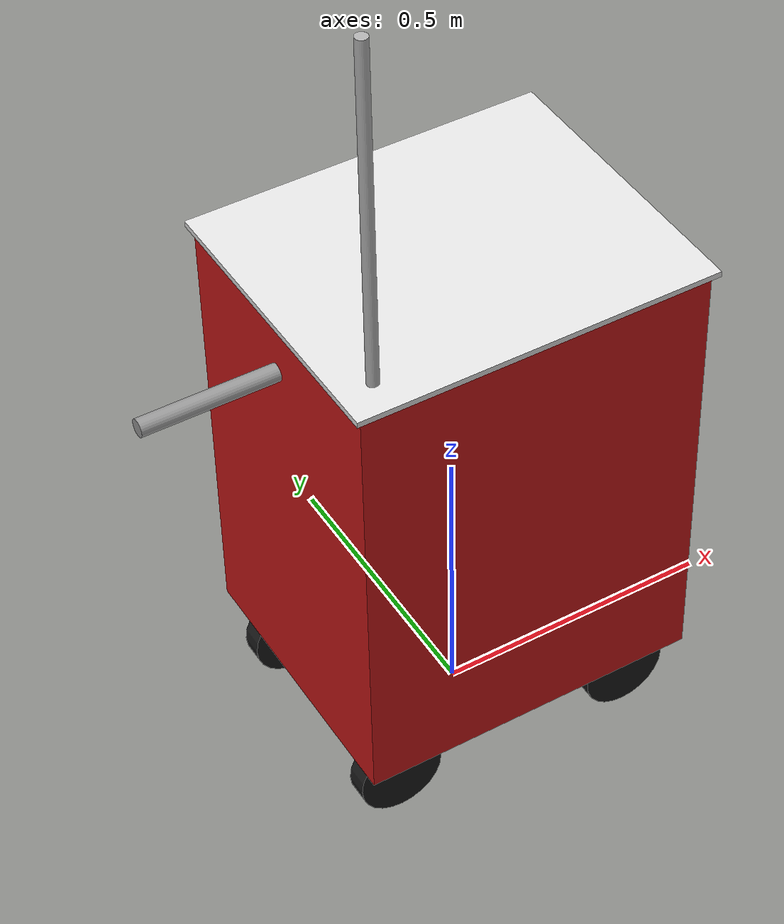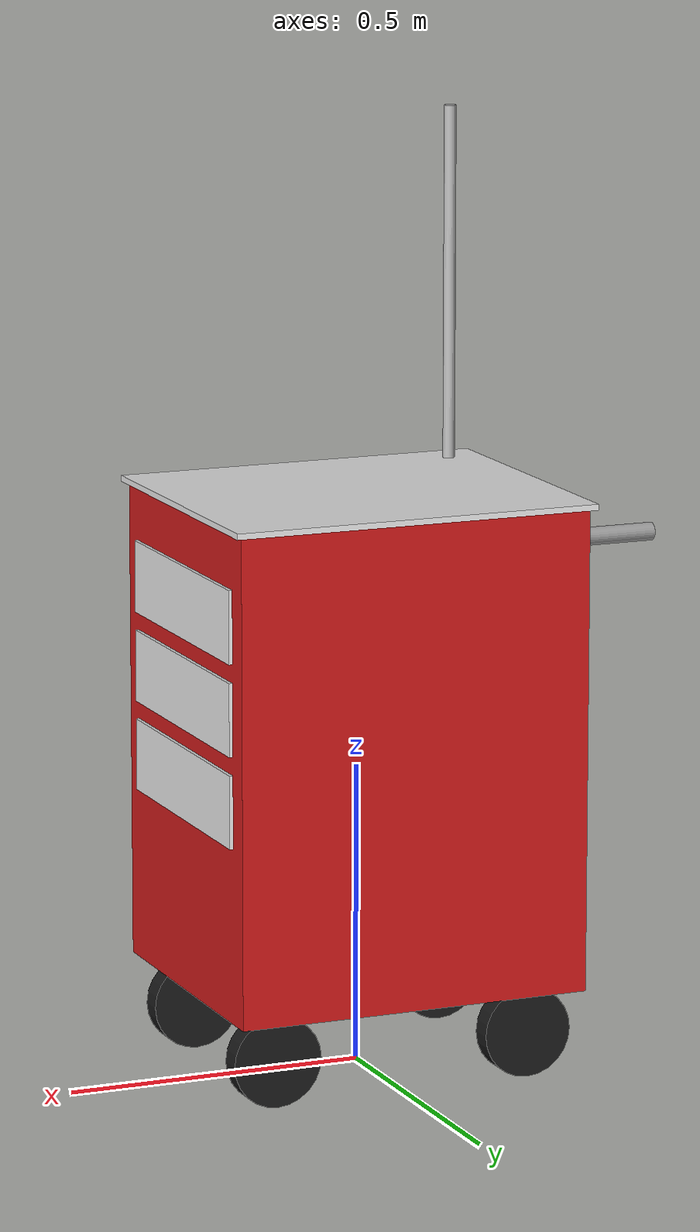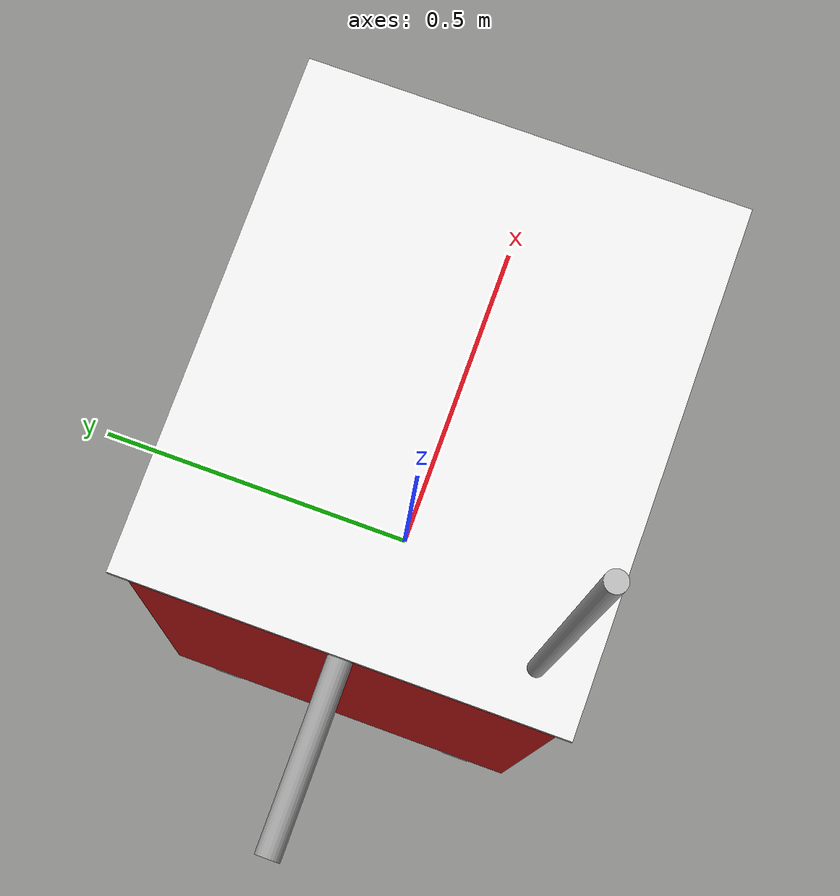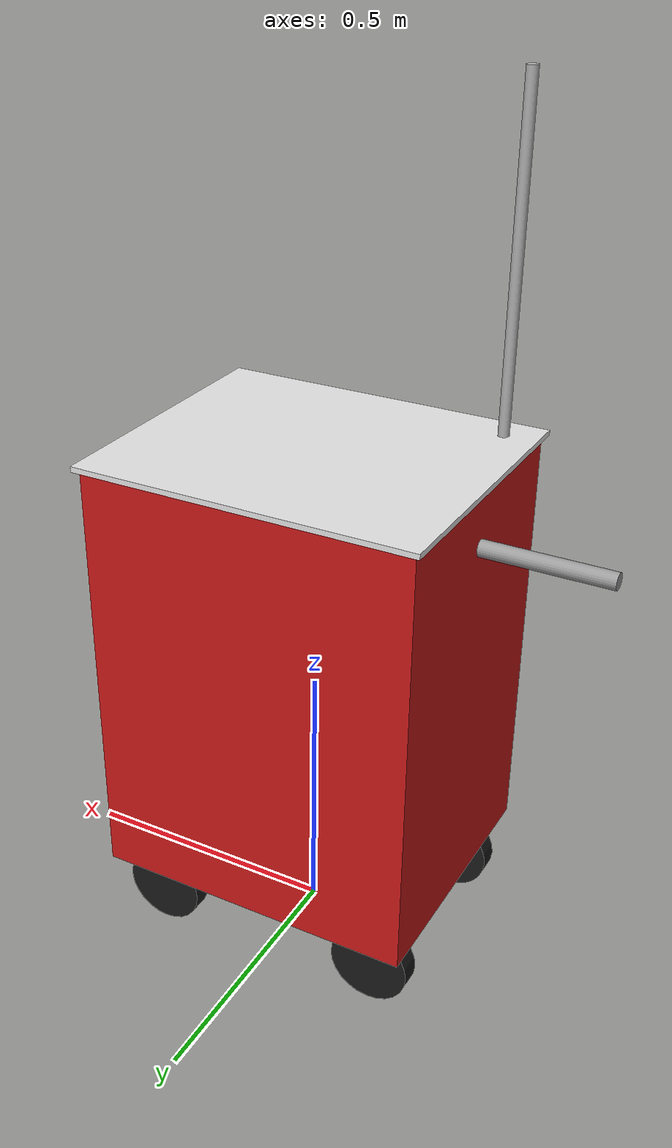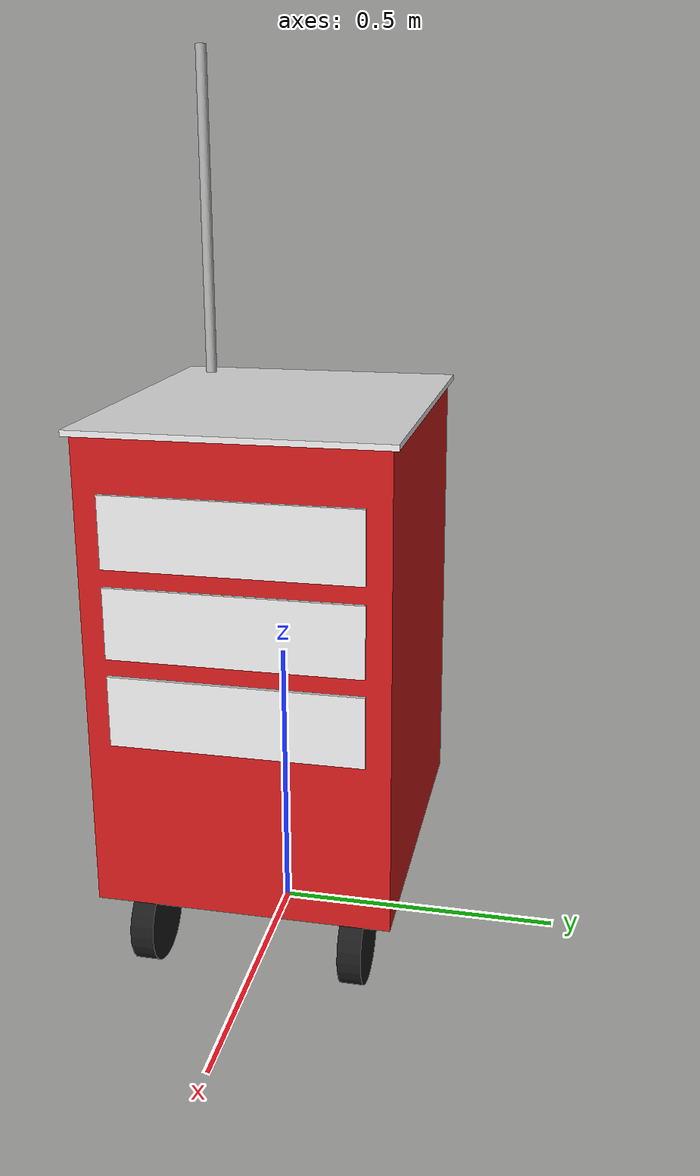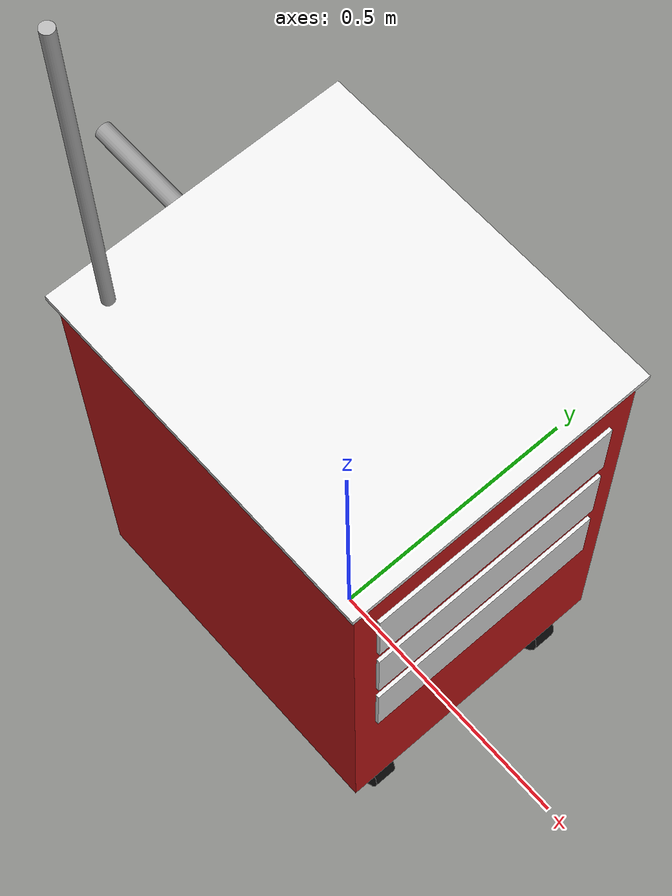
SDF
<?xml version="1.0" ?>
<sdf version="1.6">
  <model name="medical_cart">
    <static>false</static>
    <link name="chassis">
      <pose>0 0 0.55 0 0 0</pose>
      <inertial>
        <mass>25.0</mass>
        <inertia>
          <ixx>1.2</ixx>
          <ixy>0</ixy>
          <ixz>0</ixz>
          <iyy>1.2</iyy>
          <iyz>0</iyz>
          <izz>0.8</izz>
        </inertia>
      </inertial>

      <!-- Main Red Body -->
      <collision name="body_collision">
        <geometry>
          <box>
            <size>0.6 0.5 0.8</size>
          </box>
        </geometry>
      </collision>
      <visual name="body_visual">
        <geometry>
          <box>
            <size>0.6 0.5 0.8</size>
          </box>
        </geometry>
        <material>
          <ambient>0.8 0.1 0.1 1</ambient>
          <diffuse>0.8 0.1 0.1 1</diffuse>
          <specular>0.5 0.5 0.5 1</specular>
        </material>
      </visual>

      <!-- White Countertop -->
      <visual name="top_visual">
        <pose>0 0 0.405 0 0 0</pose>
        <geometry>
          <box>
            <size>0.62 0.52 0.01</size>
          </box>
        </geometry>
        <material>
          <ambient>0.9 0.9 0.9 1</ambient>
          <diffuse>0.9 0.9 0.9 1</diffuse>
        </material>
      </visual>

      <!-- Drawers (Visual accents) -->
      <visual name="drawer_1">
        <pose>0.301 0 0.25 0 0 0</pose>
        <geometry><box><size>0.01 0.42 0.12</size></box></geometry>
        <material><ambient>0.9 0.9 0.9 1</ambient><diffuse>0.9 0.9 0.9 1</diffuse></material>
      </visual>
      <visual name="drawer_2">
        <pose>0.301 0 0.10 0 0 0</pose>
        <geometry><box><size>0.01 0.42 0.12</size></box></geometry>
        <material><ambient>0.9 0.9 0.9 1</ambient><diffuse>0.9 0.9 0.9 1</diffuse></material>
      </visual>
      <visual name="drawer_3">
        <pose>0.301 0 -0.05 0 0 0</pose>
        <geometry><box><size>0.01 0.42 0.12</size></box></geometry>
        <material><ambient>0.9 0.9 0.9 1</ambient><diffuse>0.9 0.9 0.9 1</diffuse></material>
      </visual>

      <!-- Push Handle -->
      <collision name="handle_collision">
        <pose>-0.33 0 0.3 0 1.5707 0</pose>
        <geometry><cylinder><radius>0.015</radius><length>0.4</length></cylinder></geometry>
      </collision>
      <visual name="handle_visual">
        <pose>-0.33 0 0.3 0 1.5707 0</pose>
        <geometry><cylinder><radius>0.015</radius><length>0.4</length></cylinder></geometry>
        <material><ambient>0.6 0.6 0.6 1</ambient><diffuse>0.6 0.6 0.6 1</diffuse></material>
      </visual>

      <!-- IV Pole -->
      <collision name="iv_pole_collision">
        <pose>-0.25 -0.2 0.7 0 0 0</pose>
        <geometry><cylinder><radius>0.01</radius><length>0.6</length></cylinder></geometry>
      </collision>
      <visual name="iv_pole_visual">
        <pose>-0.25 -0.2 0.7 0 0 0</pose>
        <geometry><cylinder><radius>0.01</radius><length>0.6</length></cylinder></geometry>
        <material><ambient>0.7 0.7 0.7 1</ambient><diffuse>0.7 0.7 0.7 1</diffuse></material>
      </visual>
    </link>

    <!-- Macro-like definitions for the 4 wheels -->
    <link name="wheel_fl">
      <pose>0.22 0.18 0.075 0 1.5707 1.5707</pose>
      <collision name="collision">
        <geometry><cylinder><radius>0.075</radius><length>0.04</length></cylinder></geometry>
        <surface>
          <friction>
            <ode><mu>1.0</mu><mu2>1.0</mu2></ode>
          </friction>
        </surface>
      </collision>
      <visual name="visual">
        <geometry><cylinder><radius>0.075</radius><length>0.04</length></cylinder></geometry>
        <material><ambient>0.1 0.1 0.1 1</ambient><diffuse>0.1 0.1 0.1 1</diffuse></material>
      </visual>
    </link>

    <link name="wheel_fr">
      <pose>0.22 -0.18 0.075 0 1.5707 1.5707</pose>
      <collision name="collision">
        <geometry><cylinder><radius>0.075</radius><length>0.04</length></cylinder></geometry>
        <surface><friction><ode><mu>1.0</mu><mu2>1.0</mu2></ode></friction></surface>
      </collision>
      <visual name="visual">
        <geometry><cylinder><radius>0.075</radius><length>0.04</length></cylinder></geometry>
        <material><ambient>0.1 0.1 0.1 1</ambient><diffuse>0.1 0.1 0.1 1</diffuse></material>
      </visual>
    </link>

    <link name="wheel_bl">
      <pose>-0.22 0.18 0.075 0 1.5707 1.5707</pose>
      <collision name="collision">
        <geometry><cylinder><radius>0.075</radius><length>0.04</length></cylinder></geometry>
        <surface><friction><ode><mu>1.0</mu><mu2>1.0</mu2></ode></friction></surface>
      </collision>
      <visual name="visual">
        <geometry><cylinder><radius>0.075</radius><length>0.04</length></cylinder></geometry>
        <material><ambient>0.1 0.1 0.1 1</ambient><diffuse>0.1 0.1 0.1 1</diffuse></material>
      </visual>
    </link>

    <link name="wheel_br">
      <pose>-0.22 -0.18 0.075 0 1.5707 1.5707</pose>
      <collision name="collision">
        <geometry><cylinder><radius>0.075</radius><length>0.04</length></cylinder></geometry>
        <surface><friction><ode><mu>1.0</mu><mu2>1.0</mu2></ode></friction></surface>
      </collision>
      <visual name="visual">
        <geometry><cylinder><radius>0.075</radius><length>0.04</length></cylinder></geometry>
        <material><ambient>0.1 0.1 0.1 1</ambient><diffuse>0.1 0.1 0.1 1</diffuse></material>
      </visual>
    </link>

    <!-- Joints mapping wheels to the chassis -->
    <joint name="joint_fl" type="revolute">
      <parent>chassis</parent>
      <child>wheel_fl</child>
      <axis>
        <xyz>0 0 1</xyz>
        <limit><lower>-1e16</lower><upper>1e16</upper></limit>
      </axis>
    </joint>

    <joint name="joint_fr" type="revolute">
      <parent>chassis</parent>
      <child>wheel_fr</child>
      <axis>
        <xyz>0 0 1</xyz>
        <limit><lower>-1e16</lower><upper>1e16</upper></limit>
      </axis>
    </joint>

    <joint name="joint_bl" type="revolute">
      <parent>chassis</parent>
      <child>wheel_bl</child>
      <axis>
        <xyz>0 0 1</xyz>
        <limit><lower>-1e16</lower><upper>1e16</upper></limit>
      </axis>
    </joint>

    <joint name="joint_br" type="revolute">
      <parent>chassis</parent>
      <child>wheel_br</child>
      <axis>
        <xyz>0 0 1</xyz>
        <limit><lower>-1e16</lower><upper>1e16</upper></limit>
      </axis>
    </joint>
  </model>
</sdf>
